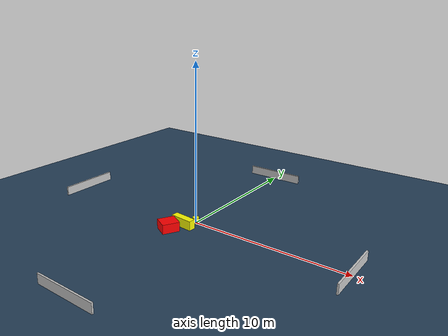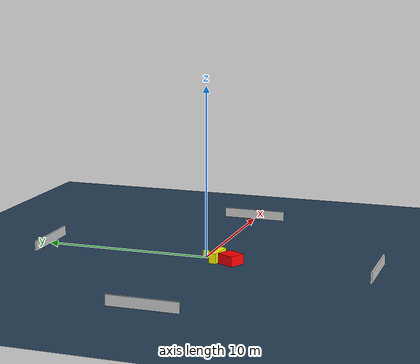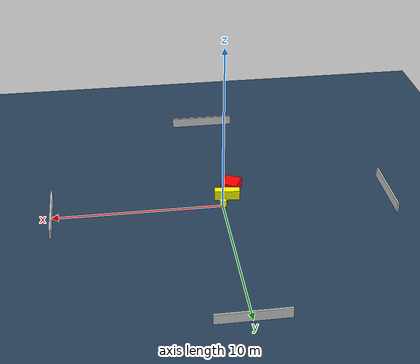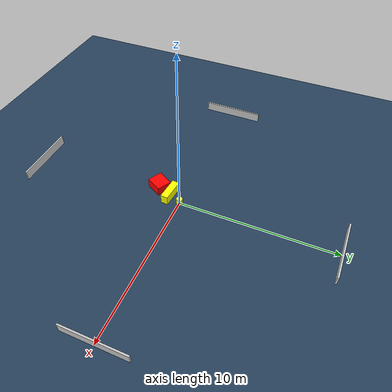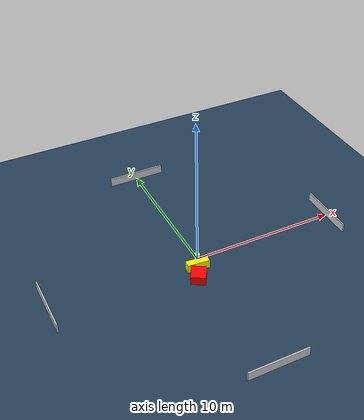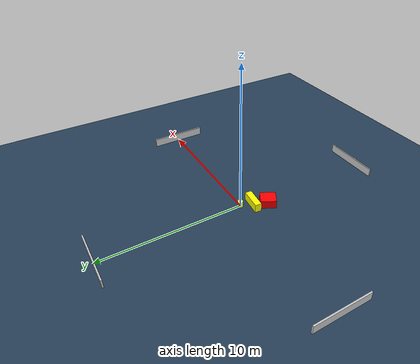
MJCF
<?xml version="1.0" ?>
<mujoco model="generated_environment">
  <option timestep="0.01" integrator="RK4" cone="elliptic"/>
  <default>
    <geom density="1"/>
  </default>
  <asset>
    <texture builtin="gradient" height="3072" name="skybox" rgb1="0.3 0.5 0.7" rgb2="0 0 0" type="skybox" width="512"/>
    <texture builtin="checker" height="300" name="groundplane" rgb1="0.2 0.3 0.4" rgb2="0.1 0.2 0.3" type="2d" width="300"/>
    <material name="groundplane" reflectance="0.2" texrepeat="5 5" texture="groundplane"/>
  </asset>
  <worldbody>
    <light dir="0 0 -1" directional="true" pos="0 0 1.5"/>
    <geom condim="3" friction="0.5 0.005 0.001" material="groundplane" name="floor" pos="0 0 0" size="0 0 0.05" type="plane"/>
    <body name="walls">
      <geom name="wall_1" condim="4" pos="-10.0 0.0 0.3" rgba="0.800000011920929 0.800000011920929 0.800000011920929 1.0" size="0.05 2.0 0.3" type="box"/>
      <geom name="wall_2" condim="4" pos="10.0 0.0 0.3" rgba="0.800000011920929 0.800000011920929 0.800000011920929 1.0" size="0.05 2.0 0.3" type="box"/>
      <geom name="wall_3" condim="4" pos="0.0 -10.0 0.3" rgba="0.800000011920929 0.800000011920929 0.800000011920929 1.0" size="2.0 0.05 0.3" type="box"/>
      <geom name="wall_4" condim="4" pos="0.0 10.0 0.3" rgba="0.800000011920929 0.800000011920929 0.800000011920929 1.0" size="2.0 0.05 0.3" type="box"/>
    </body>
    <body name="robot">
      <joint name="joint_x" type="slide" pos="0 0 0" axis="1 0 0"/>
      <joint name="joint_y" type="slide" pos="0 0 0" axis="0 1 0"/>
      <geom name="robot" type="cylinder" pos="0.0 0.0 0.2" size="0.2 0.2 0.0" mass="5.0" friction="1.0 0.005 0.0001" condim="4" rgba="1.0 1.0 0.0 1.0"/>
    </body>
    <body name="obstacle_1_movable">
      <geom name="obstacle_1_movable" condim="4" pos="-0.3622975394491643 -0.7983032391635507 0.3" euler="0 0 354.50821597415506" friction="0.0 0.005 0.001" rgba="1.0 1.0 0.0 1.0" size="0.7468153728241627 0.23058291615112042 0.3" type="box" mass="0.1"/>
      <joint type="free"/>
    </body>
    <body name="obstacle_2_static">
      <geom name="obstacle_2_static" condim="4" pos="-0.7645603924045219 -1.725667310688706 0.3" euler="0 0 240.99460670926985" friction="0.0 0.005 0.001" rgba="1.0 0.0 0.0 1.0" size="0.542326334861261 0.4863902888223446 0.3" type="box"/>
    </body>
  </worldbody>
  <actuator>
    <motor name="actuator_x" joint="joint_x" gear="1" ctrlrange="-1 1"/>
    <motor name="actuator_y" joint="joint_y" gear="1" ctrlrange="-1 1"/>
  </actuator>
</mujoco>
